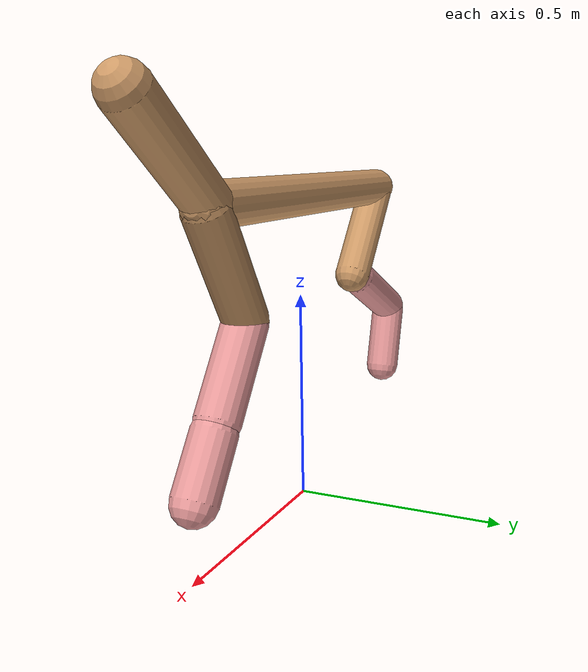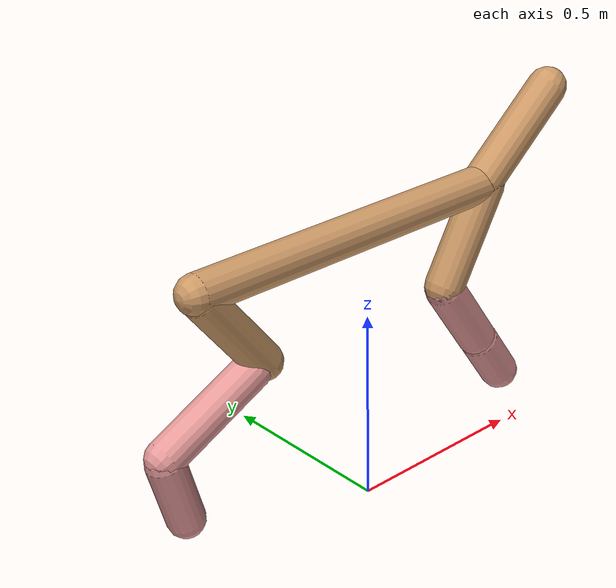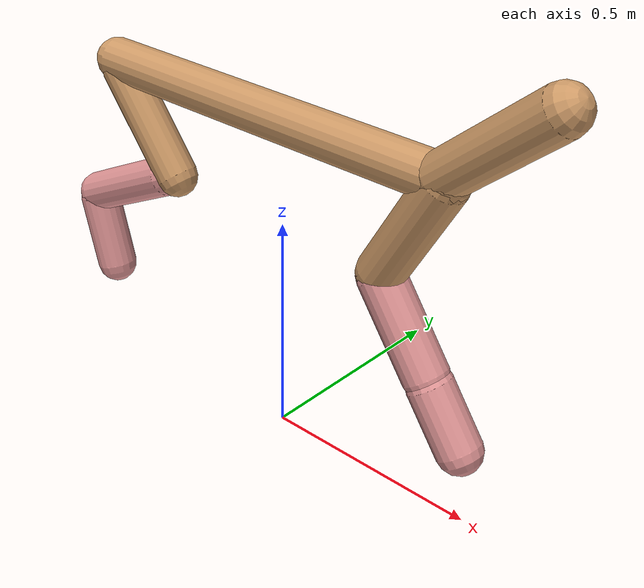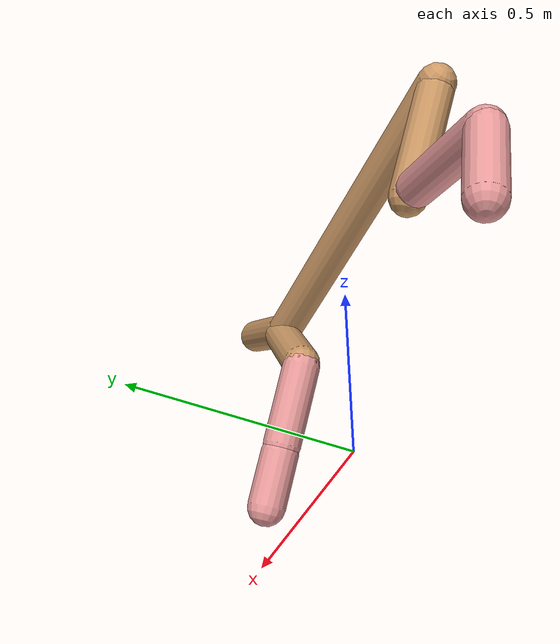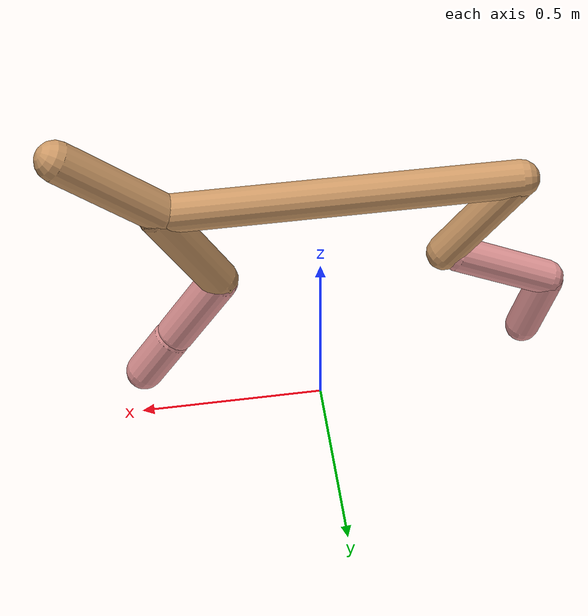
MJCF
<mujoco model="cheetah">
  <compiler angle="radian" coordinate="local" inertiafromgeom="true" settotalmass="14" />
  <default>
    <joint armature=".1" damping=".01" limited="true" solimplimit="0 .8 .03" solreflimit=".02 1" stiffness="8" />
    <geom conaffinity="0" condim="3" contype="1" friction="0.8 .1 .1" rgba="0.8 0.6 .4 1" solimp="0.0 0.8 0.01" solref="0.02 1" />
    <motor ctrllimited="true" ctrlrange="-1 1" />
  </default>
  <size nstack="300000" nuser_geom="1" />
  <option gravity="0 0 -9.81" timestep="0.01" />
  <worldbody>
    <body name="torso" pos="0.0 0.0 0.7342137478333955">
      <joint armature="0" axis="1 0 0" damping="0" limited="false" name="ignorex" pos="0 0 0" stiffness="0" type="slide" />
      <joint armature="0" axis="0 0 1" damping="0" limited="false" name="ignorez" pos="0 0 0" stiffness="0" type="slide" />
      <joint armature="0" axis="0 1 0" damping="0" limited="false" name="ignorey" pos="0 0 0" stiffness="0" type="hinge" />
      <geom fromto="-0.5 0.0 0.0 0.4026359716103582 0.0 0.0" name="torso" size="0.048299669721803155" type="capsule" />
      <geom axisangle="0 1 0 .87" name="head" pos="0.5026359716103582 0.0 0.1" size="0.050159431947460434 0.15" type="capsule" />

      <body name="bthigh" pos="-.5 0 0">
        <joint axis="0 1 0" damping="6" name="bthigh" pos="0 0 0" range="-.52 1.05" stiffness="240" type="hinge" />
        <geom axisangle="0 1 0 -3.8" name="bthigh" pos="0.09450343271211362 0.0 -0.1228544625257477" size="0.04654131476244395 0.13598495935970298" type="capsule" />
        <body name="bshin" pos="0.14900686542422723 0.0 -0.2357089250514954">
          <joint axis="0 1 0" damping="4.5" name="bshin" pos="0 0 0" range="-.785 .785" stiffness="180" type="hinge" />
          <geom axisangle="0 1 0 -2.03" name="bshin" pos="-0.1316586577827749 0.0 -0.06582932889138746" rgba="0.9 0.6 0.6 1" size="0.04654131476244395 0.1406740958893479" type="capsule" />
          <body name="bfoot" pos="-0.2633173155655498 0.0 -0.1316586577827749">
            <joint axis="0 1 0" damping="3" name="bfoot" pos="0 0 0" range="-.4 .785" stiffness="120" type="hinge" />
            <geom axisangle="0 1 0 -.27" name="bfoot" pos="0.028273206023094792 0.0 -0.09141669947467317" rgba="0.9 0.6 0.6 1" size="0.04654131476244395 0.0881557667573247" type="capsule" />
            <inertial mass="10" />
          </body>
        </body>
      </body>
      <body name="fthigh" pos="0.40263597161035825 0.0 0.0">
        <joint axis="0 1 0" damping="4.5" name="fthigh" pos="0 0 0" range="-1.5 0.8" stiffness="180" type="hinge" />
        <geom axisangle="0 1 0 .52" name="fthigh" pos="-0.07239835675276374 0.0 -0.12411146871902354" size="0.05035191604000575 0.13775986240778412" type="capsule" />
        <body name="fshin" pos="-0.14479671350552747 0.0 -0.24822293743804708">
          <joint axis="0 1 0" damping="3" name="fshin" pos="0 0 0" range="-1.2 1.1" stiffness="120" type="hinge" />
          <geom axisangle="0 1 0 -.6" name="fshin" pos="0.06722110206466005 0.0 -0.09307537208952929" rgba="0.9 0.6 0.6 1" size="0.05035191604000575 0.10979357455056478" type="capsule" />
          <body name="ffoot" pos="0.1344422041293201 0.0 -0.18615074417905858">
            <joint axis="0 1 0" damping="1.5" name="ffoot" pos="0 0 0" range="-3.1 -0.3" stiffness="60" type="hinge" />
            <geom axisangle="0 1 0 -.6" name="ffoot" pos="0.04635470091085106 0.0 -0.07210731252799055" rgba="0.9 0.6 0.6 1" size="0.05035191604000575 0.07250519074093902" type="capsule" />
            <inertial mass="10" />
          </body>
        </body>
      </body>
    </body>
  </worldbody>
  <actuator>
    <motor gear="120" joint="bthigh" name="bthigh" />
    <motor gear="90" joint="bshin" name="bshin" />
    <motor gear="60" joint="bfoot" name="bfoot" />
    <motor gear="120" joint="fthigh" name="fthigh" />
    <motor gear="60" joint="fshin" name="fshin" />
    <motor gear="30" joint="ffoot" name="ffoot" />
  </actuator>
</mujoco>
